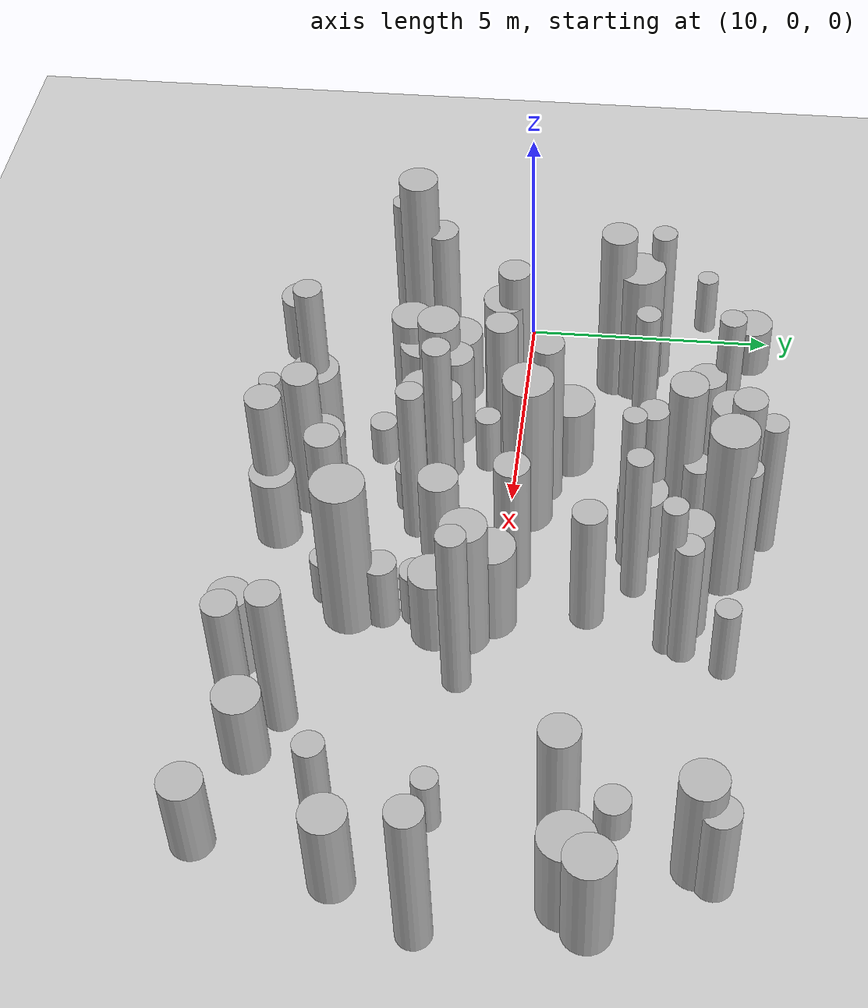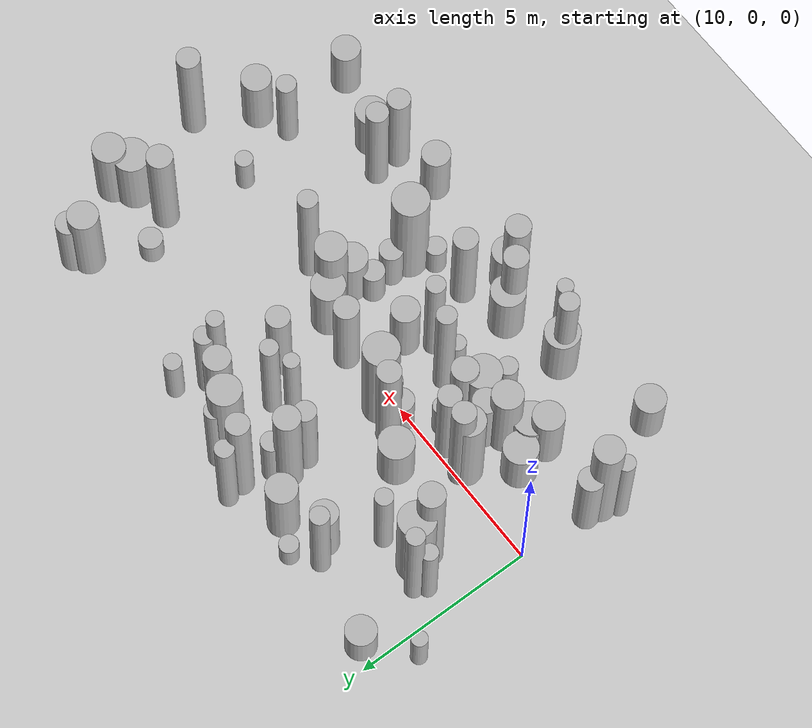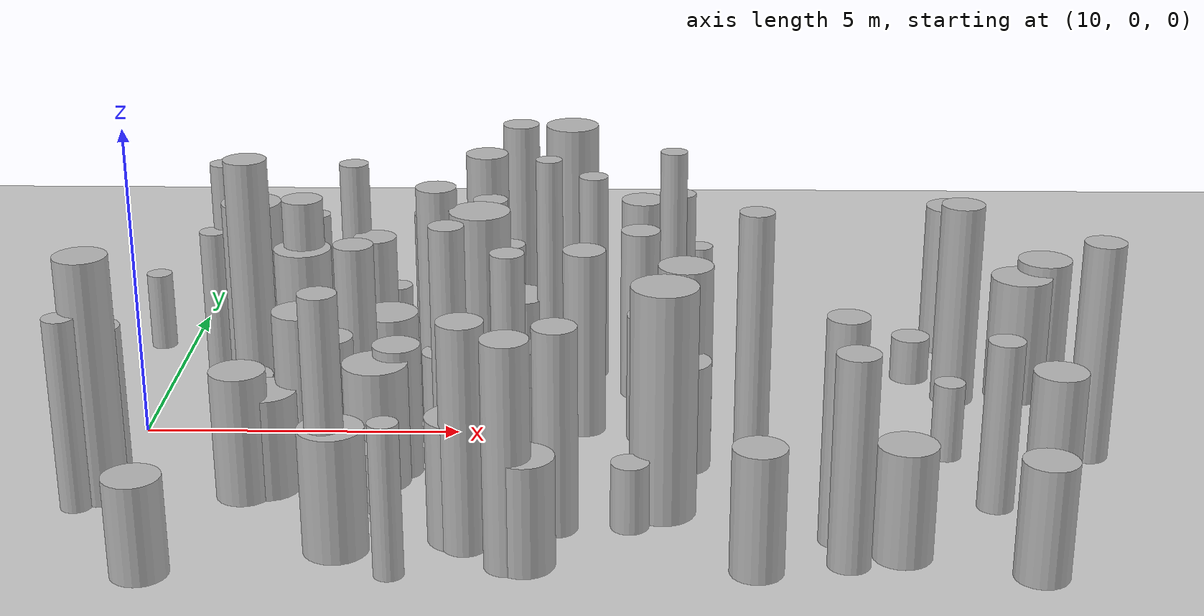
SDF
<sdf version="1.4">
 <world name="default">
  <include><uri>model://ground_plane</uri></include>
  <include><uri>model://sun</uri></include>
  <model name="forest">
   <static>true</static>
   <link name="cylinder0">
    <pose>15.618833171189834 3.588085427933331 0.9756644041523093 0 0 0</pose>
    <visual name="visual">
     <geometry>
      <cylinder><radius>0.284359071309381</radius><length>1.9513288083046185</length></cylinder>
     </geometry>
    </visual>
    <collision name="collision">
     <geometry>
      <cylinder><radius>0.284359071309381</radius><length>1.9513288083046185</length></cylinder>
     </geometry>
     <max_contacts>0</max_contacts>
    </collision>
   </link>
   <link name="cylinder2">
    <pose>15.869066007812819 2.5818272278221404 0.7011469668359454 0 0 0</pose>
    <visual name="visual">
     <geometry>
      <cylinder><radius>0.48590418580759787</radius><length>1.4022939336718907</length></cylinder>
     </geometry>
    </visual>
    <collision name="collision">
     <geometry>
      <cylinder><radius>0.48590418580759787</radius><length>1.4022939336718907</length></cylinder>
     </geometry>
     <max_contacts>0</max_contacts>
    </collision>
   </link>
   <link name="cylinder6">
    <pose>18.455997076587373 3.163391686131545 1.880218039961245 0 0 0</pose>
    <visual name="visual">
     <geometry><cylinder><radius>0.2290943265098593</radius><length>3.76043607992249</length></cylinder></geometry>
    </visual>
    <collision name="collision">
     <geometry><cylinder><radius>0.2290943265098593</radius><length>3.76043607992249</length></cylinder></geometry>
     <max_contacts>0</max_contacts>
    </collision>
   </link>
   <link name="cylinder10">
    <pose>9.865297819089555 -1.9288175522242579 1.276608084734308 0 0 0</pose>
    <visual name="visual">
     <geometry>
      <cylinder><radius>0.3400789863354158</radius><length>2.553216169468616</length></cylinder>
     </geometry>
    </visual>
    <collision name="collision">
     <geometry>
      <cylinder><radius>0.3400789863354158</radius><length>2.553216169468616</length></cylinder>
     </geometry>
     <max_contacts>0</max_contacts>
    </collision>
   </link>
   <link name="cylinder12">
    <pose>24.150455095265748 1.7320600465595293 1.043892934087018 0 0 0</pose>
    <visual name="visual">
     <geometry>
      <cylinder><radius>0.4995793661794456</radius><length>2.087785868174036</length></cylinder>
     </geometry>
    </visual>
    <collision name="collision">
     <geometry>
      <cylinder><radius>0.4995793661794456</radius><length>2.087785868174036</length></cylinder>
     </geometry>
     <max_contacts>0</max_contacts>
    </collision>
   </link>
   <link name="cylinder13">
    <pose>17.112769907476796 2.500177998868347 1.7635996860682448 0 0 0</pose>
    <visual name="visual">
     <geometry>
      <cylinder><radius>0.2428819846836711</radius><length>3.5271993721364896</length></cylinder>
     </geometry>
    </visual>
    <collision name="collision">
     <geometry>
      <cylinder><radius>0.2428819846836711</radius><length>3.5271993721364896</length></cylinder>
     </geometry>
     <max_contacts>0</max_contacts>
    </collision>
   </link>
   <link name="cylinder24">
    <pose>15.379908302124328 2.6982320132135733 1.5249028104789466 0 0 0</pose>
    <visual name="visual">
     <geometry>
      <cylinder><radius>0.29170336756379694</radius><length>3.049805620957893</length></cylinder>
     </geometry>
    </visual>
    <collision name="collision">
     <geometry>
      <cylinder><radius>0.29170336756379694</radius><length>3.049805620957893</length></cylinder>
     </geometry>
     <max_contacts>0</max_contacts>
    </collision>
   </link>
   <link name="cylinder25">
    <pose>18.54262399304106 -1.115759782688095 0.8642403718463822 0 0 0</pose>
    <visual name="visual">
     <geometry>
      <cylinder><radius>0.4387119748478481</radius><length>1.7284807436927645</length></cylinder>
     </geometry>
    </visual>
    <collision name="collision">
     <geometry>
      <cylinder><radius>0.4387119748478481</radius><length>1.7284807436927645</length></cylinder>
     </geometry>
     <max_contacts>0</max_contacts>
    </collision>
   </link>
   <link name="cylinder27">
    <pose>11.598955552039023 2.3641410631816733 1.506144262404247 0 0 0</pose>
    <visual name="visual">
     <geometry>
      <cylinder><radius>0.21004536015354663</radius><length>3.012288524808494</length></cylinder>
     </geometry>
    </visual>
    <collision name="collision">
     <geometry>
      <cylinder><radius>0.21004536015354663</radius><length>3.012288524808494</length></cylinder>
     </geometry>
     <max_contacts>0</max_contacts>
    </collision>
   </link>
   <link name="cylinder28">
    <pose>19.636039116057468 -0.5828703103376895 1.9682462506496827 0 0 0</pose>
    <visual name="visual">
     <geometry>
      <cylinder><radius>0.270144772615278</radius><length>3.9364925012993655</length></cylinder>
     </geometry>
    </visual>
    <collision name="collision">
     <geometry>
      <cylinder><radius>0.270144772615278</radius><length>3.9364925012993655</length></cylinder>
     </geometry>
     <max_contacts>0</max_contacts>
    </collision>
   </link>
   <link name="cylinder30">
    <pose>23.082292544981804 1.5226431214101073 1.6966995700673215 0 0 0</pose>
    <visual name="visual">
     <geometry>
      <cylinder><radius>0.3513936600887434</radius><length>3.393399140134643</length></cylinder>
     </geometry>
    </visual>
    <collision name="collision">
     <geometry>
      <cylinder><radius>0.3513936600887434</radius><length>3.393399140134643</length></cylinder>
     </geometry>
     <max_contacts>0</max_contacts>
    </collision>
   </link>
   <link name="cylinder32">
    <pose>15.814862429819492 4.413215667056303 1.937869286268463 0 0 0</pose>
    <visual name="visual">
     <geometry>
      <cylinder><radius>0.3162942934371233</radius><length>3.875738572536926</length></cylinder>
     </geometry>
    </visual>
    <collision name="collision">
     <geometry>
      <cylinder><radius>0.3162942934371233</radius><length>3.875738572536926</length></cylinder>
     </geometry>
     <max_contacts>0</max_contacts>
    </collision>
   </link>
   <link name="cylinder34">
    <pose>20.73754939882896 -3.6138018554823095 1.7157958831736084 0 0 0</pose>
    <visual name="visual">
     <geometry>
      <cylinder><radius>0.30385086065369515</radius><length>3.431591766347217</length></cylinder>
     </geometry>
    </visual>
    <collision name="collision">
     <geometry>
      <cylinder><radius>0.30385086065369515</radius><length>3.431591766347217</length></cylinder>
     </geometry>
     <max_contacts>0</max_contacts>
    </collision>
   </link>
   <link name="cylinder35">
    <pose>13.191856435925061 -1.275981524233222 1.0767416378343877 0 0 0</pose>
    <visual name="visual">
     <geometry>
      <cylinder><radius>0.3609251568033386</radius><length>2.1534832756687754</length></cylinder>
     </geometry>
    </visual>
    <collision name="collision">
     <geometry>
      <cylinder><radius>0.3609251568033386</radius><length>2.1534832756687754</length></cylinder>
     </geometry>
     <max_contacts>0</max_contacts>
    </collision>
   </link>
   <link name="cylinder36">
    <pose>11.859981674240593 -1.3627390776222024 0.7691769947685593 0 0 0</pose>
    <visual name="visual">
     <geometry>
      <cylinder><radius>0.46901480650192656</radius><length>1.5383539895371185</length></cylinder>
     </geometry>
    </visual>
    <collision name="collision">
     <geometry>
      <cylinder><radius>0.46901480650192656</radius><length>1.5383539895371185</length></cylinder>
     </geometry>
     <max_contacts>0</max_contacts>
    </collision>
   </link>
   <link name="cylinder37">
    <pose>16.276966125051594 -4.434674739766317 0.8388820520679676 0 0 0</pose>
    <visual name="visual">
     <geometry>
      <cylinder><radius>0.44120714200989547</radius><length>1.6777641041359352</length></cylinder>
     </geometry>
    </visual>
    <collision name="collision">
     <geometry>
      <cylinder><radius>0.44120714200989547</radius><length>1.6777641041359352</length></cylinder>
     </geometry>
     <max_contacts>0</max_contacts>
    </collision>
   </link>
   <link name="cylinder39">
    <pose>23.255342255212724 3.8501029476427124 1.3054705178780175 0 0 0</pose>
    <visual name="visual">
     <geometry>
      <cylinder><radius>0.41637683367174433</radius><length>2.610941035756035</length></cylinder>
     </geometry>
    </visual>
    <collision name="collision">
     <geometry>
      <cylinder><radius>0.41637683367174433</radius><length>2.610941035756035</length></cylinder>
     </geometry>
     <max_contacts>0</max_contacts>
    </collision>
   </link>
   <link name="cylinder45">
    <pose>13.994288956120911 -2.66267086356186 0.4747905248318759 0 0 0</pose>
    <visual name="visual">
     <geometry>
      <cylinder><radius>0.2674987229767347</radius><length>0.9495810496637518</length></cylinder>
     </geometry>
    </visual>
    <collision name="collision">
     <geometry>
      <cylinder><radius>0.2674987229767347</radius><length>0.9495810496637518</length></cylinder>
     </geometry>
     <max_contacts>0</max_contacts>
    </collision>
   </link>
   <link name="cylinder47">
    <pose>18.57813850079186 3.4514887648950925 1.4668577012974344 0 0 0</pose>
    <visual name="visual">
     <geometry>
      <cylinder><radius>0.26758956376388604</radius><length>2.933715402594869</length></cylinder>
     </geometry>
    </visual>
    <collision name="collision">
     <geometry>
      <cylinder><radius>0.26758956376388604</radius><length>2.933715402594869</length></cylinder>
     </geometry>
     <max_contacts>0</max_contacts>
    </collision>
   </link>
   <link name="cylinder48">
    <pose>24.03937666618416 -2.1780653879687817 1.0182782667376573 0 0 0</pose>
    <visual name="visual">
     <geometry>
      <cylinder><radius>0.4089840134096435</radius><length>2.0365565334753146</length></cylinder>
     </geometry>
    </visual>
    <collision name="collision">
     <geometry>
      <cylinder><radius>0.4089840134096435</radius><length>2.0365565334753146</length></cylinder>
     </geometry>
     <max_contacts>0</max_contacts>
    </collision>
   </link>
   <link name="cylinder50">
    <pose>15.269410494350545 -2.0173740347192215 0.5005023824854737 0 0 0</pose>
    <visual name="visual">
     <geometry>
      <cylinder><radius>0.23815286945406217</radius><length>1.0010047649709475</length></cylinder>
     </geometry>
    </visual>
    <collision name="collision">
     <geometry>
      <cylinder><radius>0.23815286945406217</radius><length>1.0010047649709475</length></cylinder>
     </geometry>
     <max_contacts>0</max_contacts>
    </collision>
   </link>
   <link name="cylinder54">
    <pose>15.012602676140695 -1.3892620521165688 1.9798684967381748 0 0 0</pose>
    <visual name="visual">
     <geometry>
      <cylinder><radius>0.2675338532130522</radius><length>3.9597369934763496</length></cylinder>
     </geometry>
    </visual>
    <collision name="collision">
     <geometry>
      <cylinder><radius>0.2675338532130522</radius><length>3.9597369934763496</length></cylinder>
     </geometry>
     <max_contacts>0</max_contacts>
    </collision>
   </link>
   <link name="cylinder61">
    <pose>16.672888331410277 -3.309221816926564 1.5698820206153767 0 0 0</pose>
    <visual name="visual">
     <geometry>
      <cylinder><radius>0.32848772290761613</radius><length>3.1397640412307535</length></cylinder>
     </geometry>
    </visual>
    <collision name="collision">
     <geometry>
      <cylinder><radius>0.32848772290761613</radius><length>3.1397640412307535</length></cylinder>
     </geometry>
     <max_contacts>0</max_contacts>
    </collision>
   </link>
   <link name="cylinder67">
    <pose>15.37684174129182 0.35065000647642375 1.8094163151189908 0 0 0</pose>
    <visual name="visual">
     <geometry>
      <cylinder><radius>0.48074946533755103</radius><length>3.6188326302379816</length></cylinder>
     </geometry>
    </visual>
    <collision name="collision">
     <geometry>
      <cylinder><radius>0.48074946533755103</radius><length>3.6188326302379816</length></cylinder>
     </geometry>
     <max_contacts>0</max_contacts>
    </collision>
   </link>
   <link name="cylinder69">
    <pose>18.58042648452023 -0.5070248052006363 1.524559431131524 0 0 0</pose>
    <visual name="visual">
     <geometry>
      <cylinder><radius>0.4281576148169088</radius><length>3.049118862263048</length></cylinder>
     </geometry>
    </visual>
    <collision name="collision">
     <geometry>
      <cylinder><radius>0.4281576148169088</radius><length>3.049118862263048</length></cylinder>
     </geometry>
     <max_contacts>0</max_contacts>
    </collision>
   </link>
   <link name="cylinder71">
    <pose>15.930446132314394 -1.773278490948742 1.8377988796069769 0 0 0</pose>
    <visual name="visual">
     <geometry>
      <cylinder><radius>0.2559288661274516</radius><length>3.6755977592139537</length></cylinder>
     </geometry>
    </visual>
    <collision name="collision">
     <geometry>
      <cylinder><radius>0.2559288661274516</radius><length>3.6755977592139537</length></cylinder>
     </geometry>
     <max_contacts>0</max_contacts>
    </collision>
   </link>
   <link name="cylinder73">
    <pose>22.6674340597403 -0.745565272382672 0.6230078139268471 0 0 0</pose>
    <visual name="visual">
     <geometry>
      <cylinder><radius>0.24237221904012846</radius><length>1.2460156278536942</length></cylinder>
     </geometry>
    </visual>
    <collision name="collision">
     <geometry>
      <cylinder><radius>0.24237221904012846</radius><length>1.2460156278536942</length></cylinder>
     </geometry>
     <max_contacts>0</max_contacts>
    </collision>
   </link>
   <link name="cylinder75">
    <pose>17.894258685637396 1.6676075241893713 1.4346094551642614 0 0 0</pose>
    <visual name="visual">
     <geometry>
      <cylinder><radius>0.3206421124256456</radius><length>2.869218910328523</length></cylinder>
     </geometry>
    </visual>
    <collision name="collision">
     <geometry>
      <cylinder><radius>0.3206421124256456</radius><length>2.869218910328523</length></cylinder>
     </geometry>
     <max_contacts>0</max_contacts>
    </collision>
   </link>
   <link name="cylinder80">
    <pose>18.188932230299365 -2.131682857904363 0.7354274663817877 0 0 0</pose>
    <visual name="visual">
     <geometry>
      <cylinder><radius>0.31975378407033034</radius><length>1.4708549327635754</length></cylinder>
     </geometry>
    </visual>
    <collision name="collision">
     <geometry>
      <cylinder><radius>0.31975378407033034</radius><length>1.4708549327635754</length></cylinder>
     </geometry>
     <max_contacts>0</max_contacts>
    </collision>
   </link>
   <link name="cylinder87">
    <pose>15.29312210671678 3.3111653169788955 1.834052173457336 0 0 0</pose>
    <visual name="visual">
     <geometry>
      <cylinder><radius>0.3569073584803013</radius><length>3.668104346914672</length></cylinder>
     </geometry>
    </visual>
    <collision name="collision">
     <geometry>
      <cylinder><radius>0.3569073584803013</radius><length>3.668104346914672</length></cylinder>
     </geometry>
     <max_contacts>0</max_contacts>
    </collision>
   </link>
   <link name="cylinder88">
    <pose>9.847588762865925 -2.381626657428788 1.905934736848566 0 0 0</pose>
    <visual name="visual">
     <geometry>
      <cylinder><radius>0.39718288929359236</radius><length>3.811869473697132</length></cylinder>
     </geometry>
    </visual>
    <collision name="collision">
     <geometry>
      <cylinder><radius>0.39718288929359236</radius><length>3.811869473697132</length></cylinder>
     </geometry>
     <max_contacts>0</max_contacts>
    </collision>
   </link>
   <link name="cylinder90">
    <pose>24.872312710771624 -0.6854472400734632 1.7613931504582983 0 0 0</pose>
    <visual name="visual">
     <geometry>
      <cylinder><radius>0.31945791390030603</radius><length>3.5227863009165965</length></cylinder>
     </geometry>
    </visual>
    <collision name="collision">
     <geometry>
      <cylinder><radius>0.31945791390030603</radius><length>3.5227863009165965</length></cylinder>
     </geometry>
     <max_contacts>0</max_contacts>
    </collision>
   </link>
   <link name="cylinder95">
    <pose>23.148814664360238 -2.5042760383324483 1.3228829717096846 0 0 0</pose>
    <visual name="visual">
     <geometry>
      <cylinder><radius>0.2726223879305056</radius><length>2.645765943419369</length></cylinder>
     </geometry>
    </visual>
    <collision name="collision">
     <geometry>
      <cylinder><radius>0.2726223879305056</radius><length>2.645765943419369</length></cylinder>
     </geometry>
     <max_contacts>0</max_contacts>
    </collision>
   </link>
   <link name="cylinder103">
    <pose>14.21450558731366 -1.4122438382245353 1.0411222704813858 0 0 0</pose>
    <visual name="visual">
     <geometry><cylinder><radius>0.36368818816863</radius><length>2.0822445409627717</length></cylinder></geometry>
    </visual>
    <collision name="collision">
     <geometry><cylinder><radius>0.36368818816863</radius><length>2.0822445409627717</length></cylinder></geometry>
     <max_contacts>0</max_contacts>
    </collision>
   </link>
   <link name="cylinder112">
    <pose>11.46440767361296 1.8129220902506784 1.998101436325936 0 0 0</pose>
    <visual name="visual">
     <geometry>
      <cylinder><radius>0.3535336520074889</radius><length>3.996202872651872</length></cylinder>
     </geometry>
    </visual>
    <collision name="collision">
     <geometry>
      <cylinder><radius>0.3535336520074889</radius><length>3.996202872651872</length></cylinder>
     </geometry>
     <max_contacts>0</max_contacts>
    </collision>
   </link>
   <link name="cylinder119">
    <pose>9.46537433636859 3.6734646935590263 0.6720231796240963 0 0 0</pose>
    <visual name="visual">
     <geometry>
      <cylinder><radius>0.2179989605251727</radius><length>1.3440463592481926</length></cylinder>
     </geometry>
    </visual>
    <collision name="collision">
     <geometry>
      <cylinder><radius>0.2179989605251727</radius><length>1.3440463592481926</length></cylinder>
     </geometry>
     <max_contacts>0</max_contacts>
    </collision>
   </link>
   <link name="cylinder125">
    <pose>18.938364150760968 4.223268498257353 0.8602395636205833 0 0 0</pose>
    <visual name="visual">
     <geometry>
      <cylinder><radius>0.24076666013066536</radius><length>1.7204791272411666</length></cylinder>
     </geometry>
    </visual>
    <collision name="collision">
     <geometry>
      <cylinder><radius>0.24076666013066536</radius><length>1.7204791272411666</length></cylinder>
     </geometry>
     <max_contacts>0</max_contacts>
    </collision>
   </link>
   <link name="cylinder128">
    <pose>22.484293818385765 2.4114626274174844 0.37900195702528217 0 0 0</pose>
    <visual name="visual">
     <geometry>
      <cylinder><radius>0.32220548540870947</radius><length>0.7580039140505643</length></cylinder>
     </geometry>
    </visual>
    <collision name="collision">
     <geometry>
      <cylinder><radius>0.32220548540870947</radius><length>0.7580039140505643</length></cylinder>
     </geometry>
     <max_contacts>0</max_contacts>
    </collision>
   </link>
   <link name="cylinder129">
    <pose>10.950046312237532 2.6975016287783298 1.8288176350138117 0 0 0</pose>
    <visual name="visual">
     <geometry>
      <cylinder><radius>0.24471421890424605</radius><length>3.6576352700276233</length></cylinder>
     </geometry>
    </visual>
    <collision name="collision">
     <geometry>
      <cylinder><radius>0.24471421890424605</radius><length>3.6576352700276233</length></cylinder>
     </geometry>
     <max_contacts>0</max_contacts>
    </collision>
   </link>
   <link name="cylinder130">
    <pose>20.81170218498137 -4.364990907800897 1.595134305917468 0 0 0</pose>
    <visual name="visual">
     <geometry>
      <cylinder><radius>0.31107300952613937</radius><length>3.190268611834936</length></cylinder>
     </geometry>
    </visual>
    <collision name="collision">
     <geometry>
      <cylinder><radius>0.31107300952613937</radius><length>3.190268611834936</length></cylinder>
     </geometry>
     <max_contacts>0</max_contacts>
    </collision>
   </link>
   <link name="cylinder131">
    <pose>14.019992050158194 -0.5621842852774597 0.6507148309474234 0 0 0</pose>
    <visual name="visual">
     <geometry>
      <cylinder><radius>0.25259067302601834</radius><length>1.3014296618948469</length></cylinder>
     </geometry>
    </visual>
    <collision name="collision">
     <geometry>
      <cylinder><radius>0.25259067302601834</radius><length>1.3014296618948469</length></cylinder>
     </geometry>
     <max_contacts>0</max_contacts>
    </collision>
   </link>
   <link name="cylinder132">
    <pose>14.343819958232338 4.212284860443141 1.1559738235698302 0 0 0</pose>
    <visual name="visual">
     <geometry>
      <cylinder><radius>0.4210046592090041</radius><length>2.3119476471396605</length></cylinder>
     </geometry>
    </visual>
    <collision name="collision">
     <geometry>
      <cylinder><radius>0.4210046592090041</radius><length>2.3119476471396605</length></cylinder>
     </geometry>
     <max_contacts>0</max_contacts>
    </collision>
   </link>
   <link name="cylinder136">
    <pose>13.58528162516128 -4.037219061586658 0.948229928142335 0 0 0</pose>
    <visual name="visual">
     <geometry><cylinder><radius>0.4743497154670216</radius><length>1.89645985628467</length></cylinder></geometry>
    </visual>
    <collision name="collision">
     <geometry><cylinder><radius>0.4743497154670216</radius><length>1.89645985628467</length></cylinder></geometry>
     <max_contacts>0</max_contacts>
    </collision>
   </link>
   <link name="cylinder139">
    <pose>15.31018084909158 -3.65501380733519 0.9547598001047726 0 0 0</pose>
    <visual name="visual">
     <geometry>
      <cylinder><radius>0.46489448307690273</radius><length>1.9095196002095451</length></cylinder>
     </geometry>
    </visual>
    <collision name="collision">
     <geometry>
      <cylinder><radius>0.46489448307690273</radius><length>1.9095196002095451</length></cylinder>
     </geometry>
     <max_contacts>0</max_contacts>
    </collision>
   </link>
   <link name="cylinder141">
    <pose>18.225602514473778 -2.7540152079583615 1.7710741571364472 0 0 0</pose>
    <visual name="visual">
     <geometry>
      <cylinder><radius>0.49392840925870146</radius><length>3.5421483142728944</length></cylinder>
     </geometry>
    </visual>
    <collision name="collision">
     <geometry>
      <cylinder><radius>0.49392840925870146</radius><length>3.5421483142728944</length></cylinder>
     </geometry>
     <max_contacts>0</max_contacts>
    </collision>
   </link>
   <link name="cylinder144">
    <pose>18.14017718184771 -0.07882771373697395 1.0370279638505178 0 0 0</pose>
    <visual name="visual">
     <geometry>
      <cylinder><radius>0.45857092462945426</radius><length>2.0740559277010355</length></cylinder>
     </geometry>
    </visual>
    <collision name="collision">
     <geometry>
      <cylinder><radius>0.45857092462945426</radius><length>2.0740559277010355</length></cylinder>
     </geometry>
     <max_contacts>0</max_contacts>
    </collision>
   </link>
   <link name="cylinder145">
    <pose>21.5878923470569 -4.083505008860733 0.8660438246284381 0 0 0</pose>
    <visual name="visual">
     <geometry>
      <cylinder><radius>0.4335390097781399</radius><length>1.7320876492568762</length></cylinder>
     </geometry>
    </visual>
    <collision name="collision">
     <geometry>
      <cylinder><radius>0.4335390097781399</radius><length>1.7320876492568762</length></cylinder>
     </geometry>
     <max_contacts>0</max_contacts>
    </collision>
   </link>
   <link name="cylinder146">
    <pose>17.9405683711949 3.5240028289398815 1.3997991987207294 0 0 0</pose>
    <visual name="visual">
     <geometry>
      <cylinder><radius>0.36737145257222603</radius><length>2.799598397441459</length></cylinder>
     </geometry>
    </visual>
    <collision name="collision">
     <geometry>
      <cylinder><radius>0.36737145257222603</radius><length>2.799598397441459</length></cylinder>
     </geometry>
     <max_contacts>0</max_contacts>
    </collision>
   </link>
   <link name="cylinder150">
    <pose>16.381162370636446 2.3561161998566913 1.9268009196960343 0 0 0</pose>
    <visual name="visual">
     <geometry>
      <cylinder><radius>0.218201946129321</radius><length>3.8536018393920686</length></cylinder>
     </geometry>
    </visual>
    <collision name="collision">
     <geometry>
      <cylinder><radius>0.218201946129321</radius><length>3.8536018393920686</length></cylinder>
     </geometry>
     <max_contacts>0</max_contacts>
    </collision>
   </link>
   <link name="cylinder154">
    <pose>10.566349591531932 4.635760059278487 0.5540190285944201 0 0 0</pose>
    <visual name="visual">
     <geometry>
      <cylinder><radius>0.41516041647605956</radius><length>1.1080380571888402</length></cylinder>
     </geometry>
    </visual>
    <collision name="collision">
     <geometry>
      <cylinder><radius>0.41516041647605956</radius><length>1.1080380571888402</length></cylinder>
     </geometry>
     <max_contacts>0</max_contacts>
    </collision>
   </link>
   <link name="cylinder160">
    <pose>16.451337671046282 -1.2461628371916422 0.9979975017684883 0 0 0</pose>
    <visual name="visual">
     <geometry>
      <cylinder><radius>0.3844988649222476</radius><length>1.9959950035369767</length></cylinder>
     </geometry>
    </visual>
    <collision name="collision">
     <geometry>
      <cylinder><radius>0.3844988649222476</radius><length>1.9959950035369767</length></cylinder>
     </geometry>
     <max_contacts>0</max_contacts>
    </collision>
   </link>
   <link name="cylinder166">
    <pose>14.760859800737563 0.16797211674121204 0.6640560831226112 0 0 0</pose>
    <visual name="visual">
     <geometry>
      <cylinder><radius>0.3400710718008132</radius><length>1.3281121662452224</length></cylinder>
     </geometry>
    </visual>
    <collision name="collision">
     <geometry>
      <cylinder><radius>0.3400710718008132</radius><length>1.3281121662452224</length></cylinder>
     </geometry>
     <max_contacts>0</max_contacts>
    </collision>
   </link>
   <link name="cylinder169">
    <pose>15.04221770997929 0.2972509910835539 1.1007537665238343 0 0 0</pose>
    <visual name="visual">
     <geometry>
      <cylinder><radius>0.30730968469175135</radius><length>2.2015075330476686</length></cylinder>
     </geometry>
    </visual>
    <collision name="collision">
     <geometry>
      <cylinder><radius>0.30730968469175135</radius><length>2.2015075330476686</length></cylinder>
     </geometry>
     <max_contacts>0</max_contacts>
    </collision>
   </link>
   <link name="cylinder176">
    <pose>14.414087869527947 -4.762324404997541 1.1527666749247103 0 0 0</pose>
    <visual name="visual">
     <geometry>
      <cylinder><radius>0.2185894712290372</radius><length>2.3055333498494206</length></cylinder>
     </geometry>
    </visual>
    <collision name="collision">
     <geometry>
      <cylinder><radius>0.2185894712290372</radius><length>2.3055333498494206</length></cylinder>
     </geometry>
     <max_contacts>0</max_contacts>
    </collision>
   </link>
   <link name="cylinder177">
    <pose>13.500195115871108 -4.04426721645378 1.9420578117499172 0 0 0</pose>
    <visual name="visual">
     <geometry>
      <cylinder><radius>0.27382214644406067</radius><length>3.8841156234998344</length></cylinder>
     </geometry>
    </visual>
    <collision name="collision">
     <geometry>
      <cylinder><radius>0.27382214644406067</radius><length>3.8841156234998344</length></cylinder>
     </geometry>
     <max_contacts>0</max_contacts>
    </collision>
   </link>
   <link name="cylinder179">
    <pose>9.551006199745636 -2.747063213768073 1.4991058887004636 0 0 0</pose>
    <visual name="visual">
     <geometry>
      <cylinder><radius>0.23623679124615338</radius><length>2.998211777400927</length></cylinder>
     </geometry>
    </visual>
    <collision name="collision">
     <geometry>
      <cylinder><radius>0.23623679124615338</radius><length>2.998211777400927</length></cylinder>
     </geometry>
     <max_contacts>0</max_contacts>
    </collision>
   </link>
   <link name="cylinder180">
    <pose>12.472673523236729 2.478665136182922 1.4244990196399312 0 0 0</pose>
    <visual name="visual">
     <geometry>
      <cylinder><radius>0.2434819415857285</radius><length>2.8489980392798624</length></cylinder>
     </geometry>
    </visual>
    <collision name="collision">
     <geometry>
      <cylinder><radius>0.2434819415857285</radius><length>2.8489980392798624</length></cylinder>
     </geometry>
     <max_contacts>0</max_contacts>
    </collision>
   </link>
   <link name="cylinder185">
    <pose>19.510638294913193 -4.59512989569491 0.9516024462462346 0 0 0</pose>
    <visual name="visual">
     <geometry>
      <cylinder><radius>0.38792586946560415</radius><length>1.9032048924924692</length></cylinder>
     </geometry>
    </visual>
    <collision name="collision">
     <geometry>
      <cylinder><radius>0.38792586946560415</radius><length>1.9032048924924692</length></cylinder>
     </geometry>
     <max_contacts>0</max_contacts>
    </collision>
   </link>
   <link name="cylinder193">
    <pose>13.930295488216935 -1.7763875026228195 0.9650331340401201 0 0 0</pose>
    <visual name="visual">
     <geometry>
      <cylinder><radius>0.49434182511655356</radius><length>1.9300662680802403</length></cylinder>
     </geometry>
    </visual>
    <collision name="collision">
     <geometry>
      <cylinder><radius>0.49434182511655356</radius><length>1.9300662680802403</length></cylinder>
     </geometry>
     <max_contacts>0</max_contacts>
    </collision>
   </link>
   <link name="cylinder195">
    <pose>10.955318837797108 -4.7886694553938565 0.7476500747976981 0 0 0</pose>
    <visual name="visual">
     <geometry>
      <cylinder><radius>0.4148054885515661</radius><length>1.4953001495953961</length></cylinder>
     </geometry>
    </visual>
    <collision name="collision">
     <geometry>
      <cylinder><radius>0.4148054885515661</radius><length>1.4953001495953961</length></cylinder>
     </geometry>
     <max_contacts>0</max_contacts>
    </collision>
   </link>
   <link name="cylinder197">
    <pose>16.715568873769698 4.146641277144832 1.9686635012467173 0 0 0</pose>
    <visual name="visual">
     <geometry>
      <cylinder><radius>0.4499732792170186</radius><length>3.9373270024934346</length></cylinder>
     </geometry>
    </visual>
    <collision name="collision">
     <geometry>
      <cylinder><radius>0.4499732792170186</radius><length>3.9373270024934346</length></cylinder>
     </geometry>
     <max_contacts>0</max_contacts>
    </collision>
   </link>
   <link name="cylinder198">
    <pose>24.59014402768733 2.1159324057081257 1.125577370540526 0 0 0</pose>
    <visual name="visual">
     <geometry>
      <cylinder><radius>0.44348658272278396</radius><length>2.251154741081052</length></cylinder>
     </geometry>
    </visual>
    <collision name="collision">
     <geometry>
      <cylinder><radius>0.44348658272278396</radius><length>2.251154741081052</length></cylinder>
     </geometry>
     <max_contacts>0</max_contacts>
    </collision>
   </link>
   <link name="cylinder199">
    <pose>17.00938096410689 0.1976800672627146 1.5191571650552051 0 0 0</pose>
    <visual name="visual">
     <geometry>
      <cylinder><radius>0.3381621330611577</radius><length>3.0383143301104103</length></cylinder>
     </geometry>
    </visual>
    <collision name="collision">
     <geometry>
      <cylinder><radius>0.3381621330611577</radius><length>3.0383143301104103</length></cylinder>
     </geometry>
     <max_contacts>0</max_contacts>
    </collision>
   </link>
   <link name="cylinder200">
    <pose>13.476747962515915 -0.3236396269187587 1.6449406855219855 0 0 0</pose>
    <visual name="visual">
     <geometry>
      <cylinder><radius>0.3128461345277992</radius><length>3.289881371043971</length></cylinder>
     </geometry>
    </visual>
    <collision name="collision">
     <geometry>
      <cylinder><radius>0.3128461345277992</radius><length>3.289881371043971</length></cylinder>
     </geometry>
     <max_contacts>0</max_contacts>
    </collision>
   </link>
   <link name="cylinder202">
    <pose>23.514311291980754 4.156572069989906 1.0711468245888929 0 0 0</pose>
    <visual name="visual">
     <geometry>
      <cylinder><radius>0.3437148407509333</radius><length>2.1422936491777858</length></cylinder>
     </geometry>
    </visual>
    <collision name="collision">
     <geometry>
      <cylinder><radius>0.3437148407509333</radius><length>2.1422936491777858</length></cylinder>
     </geometry>
     <max_contacts>0</max_contacts>
    </collision>
   </link>
   <link name="cylinder206">
    <pose>15.404624771311838 -3.907646682560506 1.7190149830822952 0 0 0</pose>
    <visual name="visual">
     <geometry>
      <cylinder><radius>0.3337541722941373</radius><length>3.4380299661645903</length></cylinder>
     </geometry>
    </visual>
    <collision name="collision">
     <geometry>
      <cylinder><radius>0.3337541722941373</radius><length>3.4380299661645903</length></cylinder>
     </geometry>
     <max_contacts>0</max_contacts>
    </collision>
   </link>
   <link name="cylinder209">
    <pose>13.540207139115829 4.623518563492537 0.4009286805697456 0 0 0</pose>
    <visual name="visual">
     <geometry>
      <cylinder><radius>0.2589968013228618</radius><length>0.8018573611394912</length></cylinder>
     </geometry>
    </visual>
    <collision name="collision">
     <geometry>
      <cylinder><radius>0.2589968013228618</radius><length>0.8018573611394912</length></cylinder>
     </geometry>
     <max_contacts>0</max_contacts>
    </collision>
   </link>
   <link name="cylinder210">
    <pose>11.973019621367527 -2.3038012137433785 1.0084446931294286 0 0 0</pose>
    <visual name="visual">
     <geometry>
      <cylinder><radius>0.41960270605042715</radius><length>2.0168893862588573</length></cylinder>
     </geometry>
    </visual>
    <collision name="collision">
     <geometry>
      <cylinder><radius>0.41960270605042715</radius><length>2.0168893862588573</length></cylinder>
     </geometry>
     <max_contacts>0</max_contacts>
    </collision>
   </link>
   <link name="cylinder212">
    <pose>12.3033191753292 -2.043785142286416 0.7993970199218274 0 0 0</pose>
    <visual name="visual">
     <geometry>
      <cylinder><radius>0.48828141295801847</radius><length>1.5987940398436549</length></cylinder>
     </geometry>
    </visual>
    <collision name="collision">
     <geometry>
      <cylinder><radius>0.48828141295801847</radius><length>1.5987940398436549</length></cylinder>
     </geometry>
     <max_contacts>0</max_contacts>
    </collision>
   </link>
   <link name="cylinder215">
    <pose>11.438393050276098 2.263089995302634 1.5631694689135318 0 0 0</pose>
    <visual name="visual">
     <geometry>
      <cylinder><radius>0.49414854843000877</radius><length>3.1263389378270636</length></cylinder>
     </geometry>
    </visual>
    <collision name="collision">
     <geometry>
      <cylinder><radius>0.49414854843000877</radius><length>3.1263389378270636</length></cylinder>
     </geometry>
     <max_contacts>0</max_contacts>
    </collision>
   </link>
   <link name="cylinder217">
    <pose>16.75390639318772 4.481103883194468 1.5312280149954152 0 0 0</pose>
    <visual name="visual">
     <geometry>
      <cylinder><radius>0.25182048732746715</radius><length>3.0624560299908303</length></cylinder>
     </geometry>
    </visual>
    <collision name="collision">
     <geometry>
      <cylinder><radius>0.25182048732746715</radius><length>3.0624560299908303</length></cylinder>
     </geometry>
     <max_contacts>0</max_contacts>
    </collision>
   </link>
   <link name="cylinder218">
    <pose>12.697794979163618 -0.13668770770835703 1.9797454728411403 0 0 0</pose>
    <visual name="visual">
     <geometry>
      <cylinder><radius>0.3153074016800737</radius><length>3.9594909456822807</length></cylinder>
     </geometry>
    </visual>
    <collision name="collision">
     <geometry>
      <cylinder><radius>0.3153074016800737</radius><length>3.9594909456822807</length></cylinder>
     </geometry>
     <max_contacts>0</max_contacts>
    </collision>
   </link>
   <link name="cylinder219">
    <pose>16.048655235853765 -4.483879519109195 1.706487086027416 0 0 0</pose>
    <visual name="visual">
     <geometry>
      <cylinder><radius>0.34005143386632997</radius><length>3.412974172054832</length></cylinder>
     </geometry>
    </visual>
    <collision name="collision">
     <geometry>
      <cylinder><radius>0.34005143386632997</radius><length>3.412974172054832</length></cylinder>
     </geometry>
     <max_contacts>0</max_contacts>
    </collision>
   </link>
   <link name="cylinder224">
    <pose>18.092505477581895 -1.4781932027778777 0.6095172206710713 0 0 0</pose>
    <visual name="visual">
     <geometry>
      <cylinder><radius>0.3154561783705934</radius><length>1.2190344413421426</length></cylinder>
     </geometry>
    </visual>
    <collision name="collision">
     <geometry>
      <cylinder><radius>0.3154561783705934</radius><length>1.2190344413421426</length></cylinder>
     </geometry>
     <max_contacts>0</max_contacts>
    </collision>
   </link>
   <link name="cylinder226">
    <pose>15.719750751910837 4.909769729511174 1.6112153743869737 0 0 0</pose>
    <visual name="visual">
     <geometry>
      <cylinder><radius>0.2558562151942072</radius><length>3.2224307487739474</length></cylinder>
     </geometry>
    </visual>
    <collision name="collision">
     <geometry>
      <cylinder><radius>0.2558562151942072</radius><length>3.2224307487739474</length></cylinder>
     </geometry>
     <max_contacts>0</max_contacts>
    </collision>
   </link>
   <link name="cylinder227">
    <pose>10.746915311517647 2.4046635368624534 1.2789870637765364 0 0 0</pose>
    <visual name="visual">
     <geometry>
      <cylinder><radius>0.23407696444916437</radius><length>2.5579741275530727</length></cylinder>
     </geometry>
    </visual>
    <collision name="collision">
     <geometry>
      <cylinder><radius>0.23407696444916437</radius><length>2.5579741275530727</length></cylinder>
     </geometry>
     <max_contacts>0</max_contacts>
    </collision>
   </link>
   <link name="cylinder232">
    <pose>14.67846862109878 0.644059978677384 1.956192479617331 0 0 0</pose>
    <visual name="visual">
     <geometry><cylinder><radius>0.322577153932494</radius><length>3.912384959234662</length></cylinder></geometry>
    </visual>
    <collision name="collision">
     <geometry><cylinder><radius>0.322577153932494</radius><length>3.912384959234662</length></cylinder></geometry>
     <max_contacts>0</max_contacts>
    </collision>
   </link>
   <link name="cylinder234">
    <pose>12.825688832728162 -1.6427983195081044 1.35246554517797 0 0 0</pose>
    <visual name="visual">
     <geometry><cylinder><radius>0.4166873473129833</radius><length>2.70493109035594</length></cylinder></geometry>
    </visual>
    <collision name="collision">
     <geometry><cylinder><radius>0.4166873473129833</radius><length>2.70493109035594</length></cylinder></geometry>
     <max_contacts>0</max_contacts>
    </collision>
   </link>
   <link name="cylinder235">
    <pose>23.44509333746334 -4.6501208777420375 0.8856228131662651 0 0 0</pose>
    <visual name="visual">
     <geometry>
      <cylinder><radius>0.39663516275152766</radius><length>1.7712456263325302</length></cylinder>
     </geometry>
    </visual>
    <collision name="collision">
     <geometry>
      <cylinder><radius>0.39663516275152766</radius><length>1.7712456263325302</length></cylinder>
     </geometry>
     <max_contacts>0</max_contacts>
    </collision>
   </link>
   <link name="cylinder237">
    <pose>12.69208379930025 -0.308014657091471 1.6087929509863073 0 0 0</pose>
    <visual name="visual">
     <geometry>
      <cylinder><radius>0.4405241387891761</radius><length>3.2175859019726145</length></cylinder>
     </geometry>
    </visual>
    <collision name="collision">
     <geometry>
      <cylinder><radius>0.4405241387891761</radius><length>3.2175859019726145</length></cylinder>
     </geometry>
     <max_contacts>0</max_contacts>
    </collision>
   </link>
   <link name="cylinder241">
    <pose>12.908832993118814 4.1135674817380306 1.6190202232673936 0 0 0</pose>
    <visual name="visual">
     <geometry>
      <cylinder><radius>0.2571451303471665</radius><length>3.238040446534787</length></cylinder>
     </geometry>
    </visual>
    <collision name="collision">
     <geometry>
      <cylinder><radius>0.2571451303471665</radius><length>3.238040446534787</length></cylinder>
     </geometry>
     <max_contacts>0</max_contacts>
    </collision>
   </link>
   <link name="cylinder244">
    <pose>17.743830322789563 -3.246681120145891 0.5145258743383738 0 0 0</pose>
    <visual name="visual">
     <geometry>
      <cylinder><radius>0.28259047185983005</radius><length>1.0290517486767476</length></cylinder>
     </geometry>
    </visual>
    <collision name="collision">
     <geometry>
      <cylinder><radius>0.28259047185983005</radius><length>1.0290517486767476</length></cylinder>
     </geometry>
     <max_contacts>0</max_contacts>
    </collision>
   </link>
   <link name="cylinder246">
    <pose>13.27577968210705 3.7092254728809877 1.015131955455845 0 0 0</pose>
    <visual name="visual">
     <geometry><cylinder><radius>0.3731786515451151</radius><length>2.03026391091169</length></cylinder></geometry>
    </visual>
    <collision name="collision">
     <geometry><cylinder><radius>0.3731786515451151</radius><length>2.03026391091169</length></cylinder></geometry>
     <max_contacts>0</max_contacts>
    </collision>
   </link>
   <link name="cylinder249">
    <pose>13.814548351390428 1.056951722333027 0.8257456849118898 0 0 0</pose>
    <visual name="visual">
     <geometry>
      <cylinder><radius>0.47437703984123974</radius><length>1.6514913698237796</length></cylinder>
     </geometry>
    </visual>
    <collision name="collision">
     <geometry>
      <cylinder><radius>0.47437703984123974</radius><length>1.6514913698237796</length></cylinder>
     </geometry>
     <max_contacts>0</max_contacts>
    </collision>
   </link>
  </model>
 </world>
</sdf>
